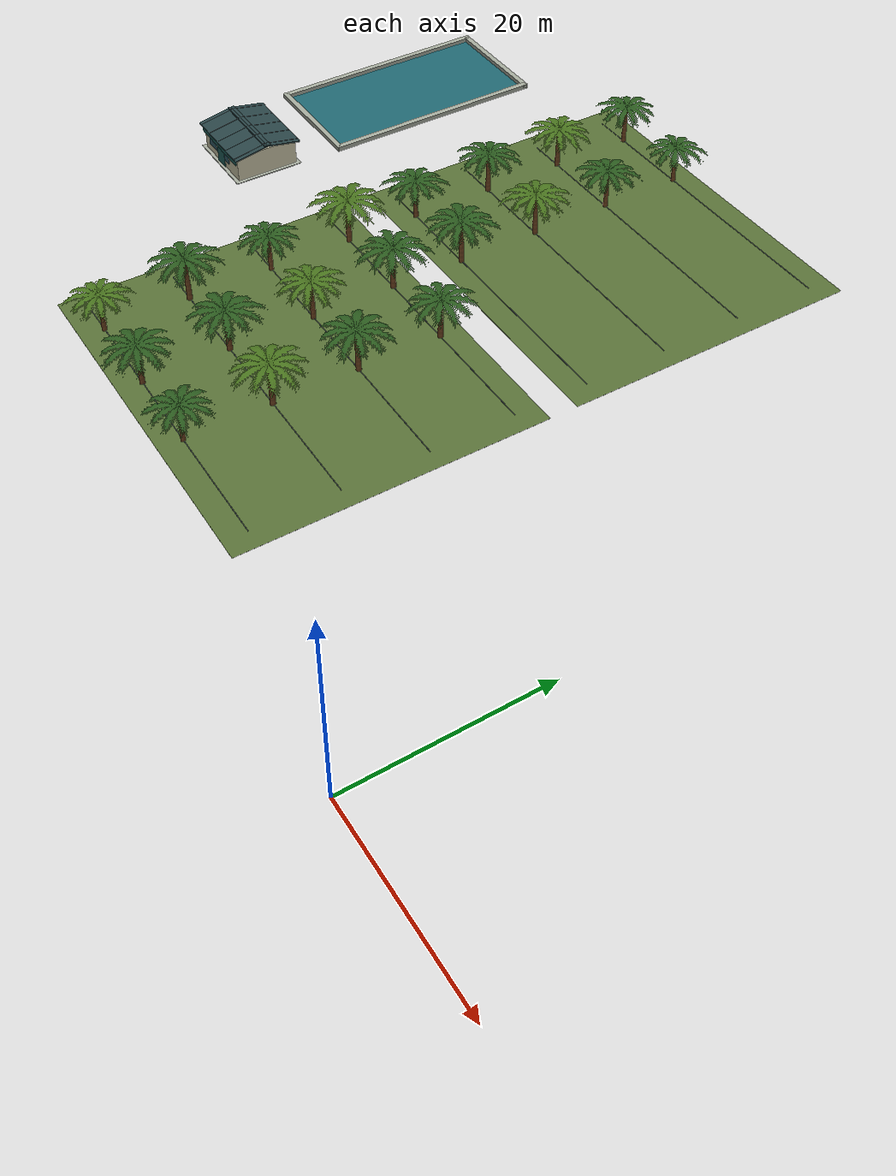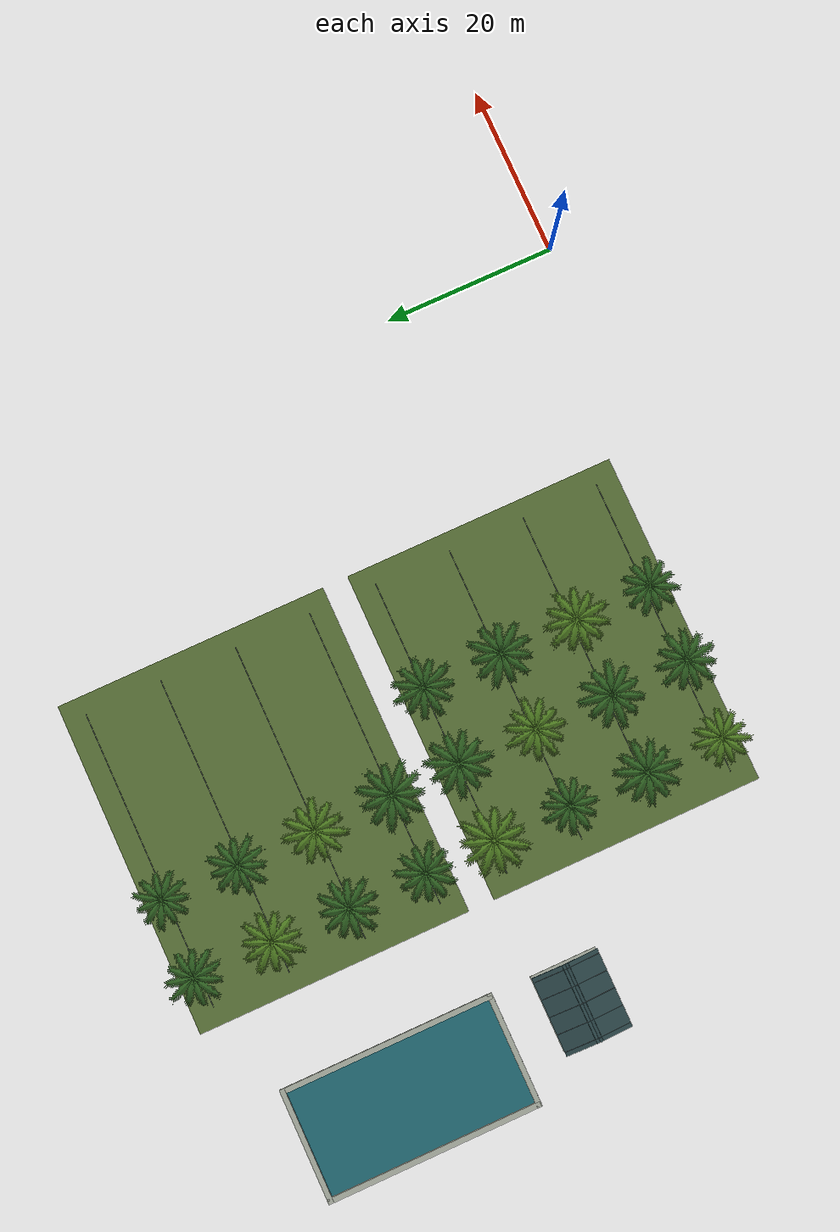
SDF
<sdf version="1.9">
 <world name="fleetscope_estate">
  <model name="plot_-44_20">
   <static>true</static>
   <pose>-44 20 0 0 0 0</pose>
   <link name="structure">
    <visual name="visual_0">
     <pose>0 0 0.008 0 0 0</pose>
     <geometry><box><size>39 32 0.016</size></box></geometry>
     <material>
      <ambient>0.34 0.43 0.21 1</ambient>
      <diffuse>0.34 0.43 0.21 1</diffuse>
      <specular>.08 .08 .08 1</specular>
     </material>
     <cast_shadows>false</cast_shadows>
    </visual>
    <collision name="collision_0">
     <pose>0 0 0.008 0 0 0</pose>
     <geometry><box><size>39 32 0.016</size></box></geometry>
    </collision>
   </link>
  </model>
  <model name="irrigation_-44_20_0">
   <static>true</static>
   <pose>-44 6.5 0 0 0 0</pose>
   <link name="structure">
    <visual name="visual_0">
     <pose>0 0 0.04 0 1.570796 0</pose>
     <geometry><cylinder><radius>0.035</radius><length>35</length></cylinder></geometry>
     <material>
      <ambient>0.25 0.29 0.3 1</ambient>
      <diffuse>0.25 0.29 0.3 1</diffuse>
      <specular>.08 .08 .08 1</specular>
     </material>
    </visual>
    <collision name="collision_0">
     <pose>0 0 0.04 0 1.570796 0</pose>
     <geometry><cylinder><radius>0.035</radius><length>35</length></cylinder></geometry>
    </collision>
   </link>
  </model>
  <model name="palm_000">
   <static>true</static>
   <pose>-57.5 6.5 0 0 0 3.1574</pose>
   <link name="structure">
    <visual name="visual_0">
     <geometry>
      <mesh><uri>model://estate_palm/meshes/trunk.obj</uri><scale>0.9262064 0.9262064 0.9262064</scale></mesh>
     </geometry>
     <material>
      <ambient>0.4 0.24 0.11 1</ambient>
      <diffuse>0.4 0.24 0.11 1</diffuse>
      <specular>.08 .08 .08 1</specular>
     </material>
    </visual>
    <visual name="visual_1">
     <geometry>
      <mesh><uri>model://estate_palm/meshes/fronds.obj</uri><scale>0.9262064 0.9262064 0.9262064</scale></mesh>
     </geometry>
     <material>
      <ambient>0.29 0.46 0.12 1</ambient>
      <diffuse>0.29 0.46 0.12 1</diffuse>
      <specular>.08 .08 .08 1</specular>
     </material>
    </visual>
    <collision name="collision_2">
     <pose>0 0 2.083964 0 0 0</pose>
     <geometry>
      <cylinder><radius>0.2408136574199387</radius><length>4.167928686114323</length></cylinder>
     </geometry>
    </collision>
   </link>
  </model>
  <model name="palm_001">
   <static>true</static>
   <pose>-48.5 6.5 0 0 0 5.403543</pose>
   <link name="structure">
    <visual name="visual_0">
     <geometry>
      <mesh><uri>model://estate_palm/meshes/trunk.obj</uri><scale>1.012601 1.012601 1.012601</scale></mesh>
     </geometry>
     <material>
      <ambient>0.4 0.24 0.11 1</ambient>
      <diffuse>0.4 0.24 0.11 1</diffuse>
      <specular>.08 .08 .08 1</specular>
     </material>
    </visual>
    <visual name="visual_1">
     <geometry>
      <mesh><uri>model://estate_palm/meshes/fronds.obj</uri><scale>1.012601 1.012601 1.012601</scale></mesh>
     </geometry>
     <material>
      <ambient>0.17 0.36 0.12 1</ambient>
      <diffuse>0.17 0.36 0.12 1</diffuse>
      <specular>.08 .08 .08 1</specular>
     </material>
    </visual>
    <collision name="collision_2">
     <pose>0 0 2.278352 0 0 0</pose>
     <geometry>
      <cylinder><radius>0.2632762591706197</radius><length>4.556704485645341</length></cylinder>
     </geometry>
    </collision>
   </link>
  </model>
  <model name="palm_002">
   <static>true</static>
   <pose>-39.5 6.5 0 0 0 1.402938</pose>
   <link name="structure">
    <visual name="visual_0">
     <geometry>
      <mesh><uri>model://estate_palm/meshes/trunk.obj</uri><scale>0.9225801 0.9225801 0.9225801</scale></mesh>
     </geometry>
     <material>
      <ambient>0.4 0.24 0.11 1</ambient>
      <diffuse>0.4 0.24 0.11 1</diffuse>
      <specular>.08 .08 .08 1</specular>
     </material>
    </visual>
    <visual name="visual_1">
     <geometry>
      <mesh><uri>model://estate_palm/meshes/fronds.obj</uri><scale>0.9225801 0.9225801 0.9225801</scale></mesh>
     </geometry>
     <material>
      <ambient>0.17 0.36 0.12 1</ambient>
      <diffuse>0.17 0.36 0.12 1</diffuse>
      <specular>.08 .08 .08 1</specular>
     </material>
    </visual>
    <collision name="collision_2">
     <pose>0 0 2.075805 0 0 0</pose>
     <geometry>
      <cylinder><radius>0.2398708278489981</radius><length>4.151610482001891</length></cylinder>
     </geometry>
    </collision>
   </link>
  </model>
  <model name="irrigation_-44_20_1">
   <static>true</static>
   <pose>-44 15.5 0 0 0 0</pose>
   <link name="structure">
    <visual name="visual_0">
     <pose>0 0 0.04 0 1.570796 0</pose>
     <geometry><cylinder><radius>0.035</radius><length>35</length></cylinder></geometry>
     <material>
      <ambient>0.25 0.29 0.3 1</ambient>
      <diffuse>0.25 0.29 0.3 1</diffuse>
      <specular>.08 .08 .08 1</specular>
     </material>
    </visual>
    <collision name="collision_0">
     <pose>0 0 0.04 0 1.570796 0</pose>
     <geometry><cylinder><radius>0.035</radius><length>35</length></cylinder></geometry>
    </collision>
   </link>
  </model>
  <model name="palm_004">
   <static>true</static>
   <pose>-57.5 15.5 0 0 0 3.442001</pose>
   <link name="structure">
    <visual name="visual_0">
     <geometry>
      <mesh><uri>model://estate_palm/meshes/trunk.obj</uri><scale>1.072342 1.072342 1.072342</scale></mesh>
     </geometry>
     <material>
      <ambient>0.4 0.24 0.11 1</ambient>
      <diffuse>0.4 0.24 0.11 1</diffuse>
      <specular>.08 .08 .08 1</specular>
     </material>
    </visual>
    <visual name="visual_1">
     <geometry>
      <mesh><uri>model://estate_palm/meshes/fronds.obj</uri><scale>1.072342 1.072342 1.072342</scale></mesh>
     </geometry>
     <material>
      <ambient>0.17 0.36 0.12 1</ambient>
      <diffuse>0.17 0.36 0.12 1</diffuse>
      <specular>.08 .08 .08 1</specular>
     </material>
    </visual>
    <collision name="collision_2">
     <pose>0 0 2.41277 0 0 0</pose>
     <geometry>
      <cylinder><radius>0.2788089574780385</radius><length>4.825539648658358</length></cylinder>
     </geometry>
    </collision>
   </link>
  </model>
  <model name="palm_005">
   <static>true</static>
   <pose>-48.5 15.5 0 0 0 4.826211</pose>
   <link name="structure">
    <visual name="visual_0">
     <geometry>
      <mesh><uri>model://estate_palm/meshes/trunk.obj</uri><scale>1.060719 1.060719 1.060719</scale></mesh>
     </geometry>
     <material>
      <ambient>0.4 0.24 0.11 1</ambient>
      <diffuse>0.4 0.24 0.11 1</diffuse>
      <specular>.08 .08 .08 1</specular>
     </material>
    </visual>
    <visual name="visual_1">
     <geometry>
      <mesh><uri>model://estate_palm/meshes/fronds.obj</uri><scale>1.060719 1.060719 1.060719</scale></mesh>
     </geometry>
     <material>
      <ambient>0.17 0.36 0.12 1</ambient>
      <diffuse>0.17 0.36 0.12 1</diffuse>
      <specular>.08 .08 .08 1</specular>
     </material>
    </visual>
    <collision name="collision_2">
     <pose>0 0 2.386617 0 0 0</pose>
     <geometry>
      <cylinder><radius>0.2757868303658065</radius><length>4.773233602485112</length></cylinder>
     </geometry>
    </collision>
   </link>
  </model>
  <model name="palm_006">
   <static>true</static>
   <pose>-39.5 15.5 0 0 0 3.685219</pose>
   <link name="structure">
    <visual name="visual_0">
     <geometry>
      <mesh><uri>model://estate_palm/meshes/trunk.obj</uri><scale>1.065226 1.065226 1.065226</scale></mesh>
     </geometry>
     <material>
      <ambient>0.4 0.24 0.11 1</ambient>
      <diffuse>0.4 0.24 0.11 1</diffuse>
      <specular>.08 .08 .08 1</specular>
     </material>
    </visual>
    <visual name="visual_1">
     <geometry>
      <mesh><uri>model://estate_palm/meshes/fronds.obj</uri><scale>1.065226 1.065226 1.065226</scale></mesh>
     </geometry>
     <material>
      <ambient>0.29 0.46 0.12 1</ambient>
      <diffuse>0.29 0.46 0.12 1</diffuse>
      <specular>.08 .08 .08 1</specular>
     </material>
    </visual>
    <collision name="collision_2">
     <pose>0 0 2.396758 0 0 0</pose>
     <geometry><cylinder><radius>0.276958684806673</radius><length>4.793515698577033</length></cylinder></geometry>
    </collision>
   </link>
  </model>
  <model name="irrigation_-44_20_2">
   <static>true</static>
   <pose>-44 24.5 0 0 0 0</pose>
   <link name="structure">
    <visual name="visual_0">
     <pose>0 0 0.04 0 1.570796 0</pose>
     <geometry><cylinder><radius>0.035</radius><length>35</length></cylinder></geometry>
     <material>
      <ambient>0.25 0.29 0.3 1</ambient>
      <diffuse>0.25 0.29 0.3 1</diffuse>
      <specular>.08 .08 .08 1</specular>
     </material>
    </visual>
    <collision name="collision_0">
     <pose>0 0 0.04 0 1.570796 0</pose>
     <geometry><cylinder><radius>0.035</radius><length>35</length></cylinder></geometry>
    </collision>
   </link>
  </model>
  <model name="palm_008">
   <static>true</static>
   <pose>-57.5 24.5 0 0 0 5.131863</pose>
   <link name="structure">
    <visual name="visual_0">
     <geometry>
      <mesh><uri>model://estate_palm/meshes/trunk.obj</uri><scale>0.924362 0.924362 0.924362</scale></mesh>
     </geometry>
     <material>
      <ambient>0.4 0.24 0.11 1</ambient>
      <diffuse>0.4 0.24 0.11 1</diffuse>
      <specular>.08 .08 .08 1</specular>
     </material>
    </visual>
    <visual name="visual_1">
     <geometry>
      <mesh><uri>model://estate_palm/meshes/fronds.obj</uri><scale>0.924362 0.924362 0.924362</scale></mesh>
     </geometry>
     <material>
      <ambient>0.17 0.36 0.12 1</ambient>
      <diffuse>0.17 0.36 0.12 1</diffuse>
      <specular>.08 .08 .08 1</specular>
     </material>
    </visual>
    <collision name="collision_2">
     <pose>0 0 2.079815 0 0 0</pose>
     <geometry>
      <cylinder><radius>0.24033413029335546</radius><length>4.159629178154229</length></cylinder>
     </geometry>
    </collision>
   </link>
  </model>
  <model name="palm_009">
   <static>true</static>
   <pose>-48.5 24.5 0 0 0 5.119305</pose>
   <link name="structure">
    <visual name="visual_0">
     <geometry>
      <mesh><uri>model://estate_palm/meshes/trunk.obj</uri><scale>0.9989241 0.9989241 0.9989241</scale></mesh>
     </geometry>
     <material>
      <ambient>0.4 0.24 0.11 1</ambient>
      <diffuse>0.4 0.24 0.11 1</diffuse>
      <specular>.08 .08 .08 1</specular>
     </material>
    </visual>
    <visual name="visual_1">
     <geometry>
      <mesh><uri>model://estate_palm/meshes/fronds.obj</uri><scale>0.9989241 0.9989241 0.9989241</scale></mesh>
     </geometry>
     <material>
      <ambient>0.29 0.46 0.12 1</ambient>
      <diffuse>0.29 0.46 0.12 1</diffuse>
      <specular>.08 .08 .08 1</specular>
     </material>
    </visual>
    <collision name="collision_2">
     <pose>0 0 2.247579 0 0 0</pose>
     <geometry><cylinder><radius>0.259720256422886</radius><length>4.495158284242257</length></cylinder></geometry>
    </collision>
   </link>
  </model>
  <model name="palm_010">
   <static>true</static>
   <pose>-39.5 24.5 0 0 0 4.268727</pose>
   <link name="structure">
    <visual name="visual_0">
     <geometry>
      <mesh><uri>model://estate_palm/meshes/trunk.obj</uri><scale>1.050739 1.050739 1.050739</scale></mesh>
     </geometry>
     <material>
      <ambient>0.4 0.24 0.11 1</ambient>
      <diffuse>0.4 0.24 0.11 1</diffuse>
      <specular>.08 .08 .08 1</specular>
     </material>
    </visual>
    <visual name="visual_1">
     <geometry>
      <mesh><uri>model://estate_palm/meshes/fronds.obj</uri><scale>1.050739 1.050739 1.050739</scale></mesh>
     </geometry>
     <material>
      <ambient>0.17 0.36 0.12 1</ambient>
      <diffuse>0.17 0.36 0.12 1</diffuse>
      <specular>.08 .08 .08 1</specular>
     </material>
    </visual>
    <collision name="collision_2">
     <pose>0 0 2.364163 0 0 0</pose>
     <geometry>
      <cylinder><radius>0.27319218545887175</radius><length>4.728326286788165</length></cylinder>
     </geometry>
    </collision>
   </link>
  </model>
  <model name="irrigation_-44_20_3">
   <static>true</static>
   <pose>-44 33.5 0 0 0 0</pose>
   <link name="structure">
    <visual name="visual_0">
     <pose>0 0 0.04 0 1.570796 0</pose>
     <geometry><cylinder><radius>0.035</radius><length>35</length></cylinder></geometry>
     <material>
      <ambient>0.25 0.29 0.3 1</ambient>
      <diffuse>0.25 0.29 0.3 1</diffuse>
      <specular>.08 .08 .08 1</specular>
     </material>
    </visual>
    <collision name="collision_0">
     <pose>0 0 0.04 0 1.570796 0</pose>
     <geometry><cylinder><radius>0.035</radius><length>35</length></cylinder></geometry>
    </collision>
   </link>
  </model>
  <model name="palm_012">
   <static>true</static>
   <pose>-57.5 33.5 0 0 0 5.839073</pose>
   <link name="structure">
    <visual name="visual_0">
     <geometry>
      <mesh><uri>model://estate_palm/meshes/trunk.obj</uri><scale>1.115581 1.115581 1.115581</scale></mesh>
     </geometry>
     <material>
      <ambient>0.4 0.24 0.11 1</ambient>
      <diffuse>0.4 0.24 0.11 1</diffuse>
      <specular>.08 .08 .08 1</specular>
     </material>
    </visual>
    <visual name="visual_1">
     <geometry>
      <mesh><uri>model://estate_palm/meshes/fronds.obj</uri><scale>1.115581 1.115581 1.115581</scale></mesh>
     </geometry>
     <material>
      <ambient>0.29 0.46 0.12 1</ambient>
      <diffuse>0.29 0.46 0.12 1</diffuse>
      <specular>.08 .08 .08 1</specular>
     </material>
    </visual>
    <collision name="collision_2">
     <pose>0 0 2.510057 0 0 0</pose>
     <geometry>
      <cylinder><radius>0.29005098631037485</radius><length>5.020113224602641</length></cylinder>
     </geometry>
    </collision>
   </link>
  </model>
  <model name="palm_013">
   <static>true</static>
   <pose>-48.5 33.5 0 0 0 6.281025</pose>
   <link name="structure">
    <visual name="visual_0">
     <geometry>
      <mesh><uri>model://estate_palm/meshes/trunk.obj</uri><scale>1.07713 1.07713 1.07713</scale></mesh>
     </geometry>
     <material>
      <ambient>0.4 0.24 0.11 1</ambient>
      <diffuse>0.4 0.24 0.11 1</diffuse>
      <specular>.08 .08 .08 1</specular>
     </material>
    </visual>
    <visual name="visual_1">
     <geometry>
      <mesh><uri>model://estate_palm/meshes/fronds.obj</uri><scale>1.07713 1.07713 1.07713</scale></mesh>
     </geometry>
     <material>
      <ambient>0.17 0.36 0.12 1</ambient>
      <diffuse>0.17 0.36 0.12 1</diffuse>
      <specular>.08 .08 .08 1</specular>
     </material>
    </visual>
    <collision name="collision_2">
     <pose>0 0 2.423542 0 0 0</pose>
     <geometry>
      <cylinder><radius>0.28005377354269406</radius><length>4.847084542085089</length></cylinder>
     </geometry>
    </collision>
   </link>
  </model>
  <model name="palm_014">
   <static>true</static>
   <pose>-39.5 33.5 0 0 0 0.4795321</pose>
   <link name="structure">
    <visual name="visual_0">
     <geometry>
      <mesh><uri>model://estate_palm/meshes/trunk.obj</uri><scale>1.012989 1.012989 1.012989</scale></mesh>
     </geometry>
     <material>
      <ambient>0.4 0.24 0.11 1</ambient>
      <diffuse>0.4 0.24 0.11 1</diffuse>
      <specular>.08 .08 .08 1</specular>
     </material>
    </visual>
    <visual name="visual_1">
     <geometry>
      <mesh><uri>model://estate_palm/meshes/fronds.obj</uri><scale>1.012989 1.012989 1.012989</scale></mesh>
     </geometry>
     <material>
      <ambient>0.17 0.36 0.12 1</ambient>
      <diffuse>0.17 0.36 0.12 1</diffuse>
      <specular>.08 .08 .08 1</specular>
     </material>
    </visual>
    <collision name="collision_2">
     <pose>0 0 2.279226 0 0 0</pose>
     <geometry>
      <cylinder><radius>0.2633772076672125</radius><length>4.558451671163293</length></cylinder>
     </geometry>
    </collision>
   </link>
  </model>
  <model name="plot_-44_55">
   <static>true</static>
   <pose>-44 55 0 0 0 0</pose>
   <link name="structure">
    <visual name="visual_0">
     <pose>0 0 0.008 0 0 0</pose>
     <geometry><box><size>39 32 0.016</size></box></geometry>
     <material>
      <ambient>0.34 0.43 0.21 1</ambient>
      <diffuse>0.34 0.43 0.21 1</diffuse>
      <specular>.08 .08 .08 1</specular>
     </material>
     <cast_shadows>false</cast_shadows>
    </visual>
    <collision name="collision_0">
     <pose>0 0 0.008 0 0 0</pose>
     <geometry><box><size>39 32 0.016</size></box></geometry>
    </collision>
   </link>
  </model>
  <model name="irrigation_-44_55_0">
   <static>true</static>
   <pose>-44 41.5 0 0 0 0</pose>
   <link name="structure">
    <visual name="visual_0">
     <pose>0 0 0.04 0 1.570796 0</pose>
     <geometry><cylinder><radius>0.035</radius><length>35</length></cylinder></geometry>
     <material>
      <ambient>0.25 0.29 0.3 1</ambient>
      <diffuse>0.25 0.29 0.3 1</diffuse>
      <specular>.08 .08 .08 1</specular>
     </material>
    </visual>
    <collision name="collision_0">
     <pose>0 0 0.04 0 1.570796 0</pose>
     <geometry><cylinder><radius>0.035</radius><length>35</length></cylinder></geometry>
    </collision>
   </link>
  </model>
  <model name="palm_016">
   <static>true</static>
   <pose>-57.5 41.5 0 0 0 2.874229</pose>
   <link name="structure">
    <visual name="visual_0">
     <geometry>
      <mesh><uri>model://estate_palm/meshes/trunk.obj</uri><scale>0.9642668 0.9642668 0.9642668</scale></mesh>
     </geometry>
     <material>
      <ambient>0.4 0.24 0.11 1</ambient>
      <diffuse>0.4 0.24 0.11 1</diffuse>
      <specular>.08 .08 .08 1</specular>
     </material>
    </visual>
    <visual name="visual_1">
     <geometry>
      <mesh><uri>model://estate_palm/meshes/fronds.obj</uri><scale>0.9642668 0.9642668 0.9642668</scale></mesh>
     </geometry>
     <material>
      <ambient>0.17 0.36 0.12 1</ambient>
      <diffuse>0.17 0.36 0.12 1</diffuse>
      <specular>.08 .08 .08 1</specular>
     </material>
    </visual>
    <collision name="collision_2">
     <pose>0 0 2.1696 0 0 0</pose>
     <geometry>
      <cylinder><radius>0.25070937121846404</radius><length>4.339200655704184</length></cylinder>
     </geometry>
    </collision>
   </link>
  </model>
  <model name="palm_017">
   <static>true</static>
   <pose>-48.5 41.5 0 0 0 4.423209</pose>
   <link name="structure">
    <visual name="visual_0">
     <geometry>
      <mesh><uri>model://estate_palm/meshes/trunk.obj</uri><scale>1.092824 1.092824 1.092824</scale></mesh>
     </geometry>
     <material>
      <ambient>0.4 0.24 0.11 1</ambient>
      <diffuse>0.4 0.24 0.11 1</diffuse>
      <specular>.08 .08 .08 1</specular>
     </material>
    </visual>
    <visual name="visual_1">
     <geometry>
      <mesh><uri>model://estate_palm/meshes/fronds.obj</uri><scale>1.092824 1.092824 1.092824</scale></mesh>
     </geometry>
     <material>
      <ambient>0.17 0.36 0.12 1</ambient>
      <diffuse>0.17 0.36 0.12 1</diffuse>
      <specular>.08 .08 .08 1</specular>
     </material>
    </visual>
    <collision name="collision_2">
     <pose>0 0 2.458855 0 0 0</pose>
     <geometry>
      <cylinder><radius>0.28413435913087637</radius><length>4.917710061880553</length></cylinder>
     </geometry>
    </collision>
   </link>
  </model>
  <model name="irrigation_-44_55_1">
   <static>true</static>
   <pose>-44 50.5 0 0 0 0</pose>
   <link name="structure">
    <visual name="visual_0">
     <pose>0 0 0.04 0 1.570796 0</pose>
     <geometry><cylinder><radius>0.035</radius><length>35</length></cylinder></geometry>
     <material>
      <ambient>0.25 0.29 0.3 1</ambient>
      <diffuse>0.25 0.29 0.3 1</diffuse>
      <specular>.08 .08 .08 1</specular>
     </material>
    </visual>
    <collision name="collision_0">
     <pose>0 0 0.04 0 1.570796 0</pose>
     <geometry><cylinder><radius>0.035</radius><length>35</length></cylinder></geometry>
    </collision>
   </link>
  </model>
  <model name="palm_020">
   <static>true</static>
   <pose>-57.5 50.5 0 0 0 2.505567</pose>
   <link name="structure">
    <visual name="visual_0">
     <geometry>
      <mesh><uri>model://estate_palm/meshes/trunk.obj</uri><scale>0.9928878 0.9928878 0.9928878</scale></mesh>
     </geometry>
     <material>
      <ambient>0.4 0.24 0.11 1</ambient>
      <diffuse>0.4 0.24 0.11 1</diffuse>
      <specular>.08 .08 .08 1</specular>
     </material>
    </visual>
    <visual name="visual_1">
     <geometry>
      <mesh><uri>model://estate_palm/meshes/fronds.obj</uri><scale>0.9928878 0.9928878 0.9928878</scale></mesh>
     </geometry>
     <material>
      <ambient>0.17 0.36 0.12 1</ambient>
      <diffuse>0.17 0.36 0.12 1</diffuse>
      <specular>.08 .08 .08 1</specular>
     </material>
    </visual>
    <collision name="collision_2">
     <pose>0 0 2.233998 0 0 0</pose>
     <geometry>
      <cylinder><radius>0.2581508407949443</radius><length>4.467995321450959</length></cylinder>
     </geometry>
    </collision>
   </link>
  </model>
  <model name="palm_021">
   <static>true</static>
   <pose>-48.5 50.5 0 0 0 3.131886</pose>
   <link name="structure">
    <visual name="visual_0">
     <geometry>
      <mesh><uri>model://estate_palm/meshes/trunk.obj</uri><scale>1.028858 1.028858 1.028858</scale></mesh>
     </geometry>
     <material>
      <ambient>0.4 0.24 0.11 1</ambient>
      <diffuse>0.4 0.24 0.11 1</diffuse>
      <specular>.08 .08 .08 1</specular>
     </material>
    </visual>
    <visual name="visual_1">
     <geometry>
      <mesh><uri>model://estate_palm/meshes/fronds.obj</uri><scale>1.028858 1.028858 1.028858</scale></mesh>
     </geometry>
     <material>
      <ambient>0.29 0.46 0.12 1</ambient>
      <diffuse>0.29 0.46 0.12 1</diffuse>
      <specular>.08 .08 .08 1</specular>
     </material>
    </visual>
    <collision name="collision_2">
     <pose>0 0 2.31493 0 0 0</pose>
     <geometry><cylinder><radius>0.267503059093017</radius><length>4.629860638148371</length></cylinder></geometry>
    </collision>
   </link>
  </model>
  <model name="irrigation_-44_55_2">
   <static>true</static>
   <pose>-44 59.5 0 0 0 0</pose>
   <link name="structure">
    <visual name="visual_0">
     <pose>0 0 0.04 0 1.570796 0</pose>
     <geometry><cylinder><radius>0.035</radius><length>35</length></cylinder></geometry>
     <material>
      <ambient>0.25 0.29 0.3 1</ambient>
      <diffuse>0.25 0.29 0.3 1</diffuse>
      <specular>.08 .08 .08 1</specular>
     </material>
    </visual>
    <collision name="collision_0">
     <pose>0 0 0.04 0 1.570796 0</pose>
     <geometry><cylinder><radius>0.035</radius><length>35</length></cylinder></geometry>
    </collision>
   </link>
  </model>
  <model name="palm_024">
   <static>true</static>
   <pose>-57.5 59.5 0 0 0 5.760139</pose>
   <link name="structure">
    <visual name="visual_0">
     <geometry>
      <mesh><uri>model://estate_palm/meshes/trunk.obj</uri><scale>1.008027 1.008027 1.008027</scale></mesh>
     </geometry>
     <material>
      <ambient>0.4 0.24 0.11 1</ambient>
      <diffuse>0.4 0.24 0.11 1</diffuse>
      <specular>.08 .08 .08 1</specular>
     </material>
    </visual>
    <visual name="visual_1">
     <geometry>
      <mesh><uri>model://estate_palm/meshes/fronds.obj</uri><scale>1.008027 1.008027 1.008027</scale></mesh>
     </geometry>
     <material>
      <ambient>0.29 0.46 0.12 1</ambient>
      <diffuse>0.29 0.46 0.12 1</diffuse>
      <specular>.08 .08 .08 1</specular>
     </material>
    </visual>
    <collision name="collision_2">
     <pose>0 0 2.26806 0 0 0</pose>
     <geometry>
      <cylinder><radius>0.2620869566647268</radius><length>4.536120403812579</length></cylinder>
     </geometry>
    </collision>
   </link>
  </model>
  <model name="palm_025">
   <static>true</static>
   <pose>-48.5 59.5 0 0 0 2.638725</pose>
   <link name="structure">
    <visual name="visual_0">
     <geometry>
      <mesh><uri>model://estate_palm/meshes/trunk.obj</uri><scale>0.9569016 0.9569016 0.9569016</scale></mesh>
     </geometry>
     <material>
      <ambient>0.4 0.24 0.11 1</ambient>
      <diffuse>0.4 0.24 0.11 1</diffuse>
      <specular>.08 .08 .08 1</specular>
     </material>
    </visual>
    <visual name="visual_1">
     <geometry>
      <mesh><uri>model://estate_palm/meshes/fronds.obj</uri><scale>0.9569016 0.9569016 0.9569016</scale></mesh>
     </geometry>
     <material>
      <ambient>0.17 0.36 0.12 1</ambient>
      <diffuse>0.17 0.36 0.12 1</diffuse>
      <specular>.08 .08 .08 1</specular>
     </material>
    </visual>
    <collision name="collision_2">
     <pose>0 0 2.153028 0 0 0</pose>
     <geometry>
      <cylinder><radius>0.2487944043271551</radius><length>4.306056997969992</length></cylinder>
     </geometry>
    </collision>
   </link>
  </model>
  <model name="irrigation_-44_55_3">
   <static>true</static>
   <pose>-44 68.5 0 0 0 0</pose>
   <link name="structure">
    <visual name="visual_0">
     <pose>0 0 0.04 0 1.570796 0</pose>
     <geometry><cylinder><radius>0.035</radius><length>35</length></cylinder></geometry>
     <material>
      <ambient>0.25 0.29 0.3 1</ambient>
      <diffuse>0.25 0.29 0.3 1</diffuse>
      <specular>.08 .08 .08 1</specular>
     </material>
    </visual>
    <collision name="collision_0">
     <pose>0 0 0.04 0 1.570796 0</pose>
     <geometry><cylinder><radius>0.035</radius><length>35</length></cylinder></geometry>
    </collision>
   </link>
  </model>
  <model name="palm_028">
   <static>true</static>
   <pose>-57.5 68.5 0 0 0 0.8105237</pose>
   <link name="structure">
    <visual name="visual_0">
     <geometry>
      <mesh><uri>model://estate_palm/meshes/trunk.obj</uri><scale>0.9493955 0.9493955 0.9493955</scale></mesh>
     </geometry>
     <material>
      <ambient>0.4 0.24 0.11 1</ambient>
      <diffuse>0.4 0.24 0.11 1</diffuse>
      <specular>.08 .08 .08 1</specular>
     </material>
    </visual>
    <visual name="visual_1">
     <geometry>
      <mesh><uri>model://estate_palm/meshes/fronds.obj</uri><scale>0.9493955 0.9493955 0.9493955</scale></mesh>
     </geometry>
     <material>
      <ambient>0.17 0.36 0.12 1</ambient>
      <diffuse>0.17 0.36 0.12 1</diffuse>
      <specular>.08 .08 .08 1</specular>
     </material>
    </visual>
    <collision name="collision_2">
     <pose>0 0 2.13614 0 0 0</pose>
     <geometry>
      <cylinder><radius>0.24684282249365203</radius><length>4.272279620082439</length></cylinder>
     </geometry>
    </collision>
   </link>
  </model>
  <model name="palm_029">
   <static>true</static>
   <pose>-48.5 68.5 0 0 0 4.427526</pose>
   <link name="structure">
    <visual name="visual_0">
     <geometry>
      <mesh><uri>model://estate_palm/meshes/trunk.obj</uri><scale>0.9107553 0.9107553 0.9107553</scale></mesh>
     </geometry>
     <material>
      <ambient>0.4 0.24 0.11 1</ambient>
      <diffuse>0.4 0.24 0.11 1</diffuse>
      <specular>.08 .08 .08 1</specular>
     </material>
    </visual>
    <visual name="visual_1">
     <geometry>
      <mesh><uri>model://estate_palm/meshes/fronds.obj</uri><scale>0.9107553 0.9107553 0.9107553</scale></mesh>
     </geometry>
     <material>
      <ambient>0.17 0.36 0.12 1</ambient>
      <diffuse>0.17 0.36 0.12 1</diffuse>
      <specular>.08 .08 .08 1</specular>
     </material>
    </visual>
    <collision name="collision_2">
     <pose>0 0 2.049199 0 0 0</pose>
     <geometry>
      <cylinder><radius>0.23679637684127602</radius><length>4.098398829945162</length></cylinder>
     </geometry>
    </collision>
   </link>
  </model>
  <model name="reservoir">
   <static>true</static>
   <pose>-79 53 0 0 0 0</pose>
   <link name="structure">
    <visual name="visual_0">
     <pose>0 0 0.02 0 0 0</pose>
     <geometry><box><size>12 24 0.04</size></box></geometry>
     <material>
      <ambient>0.12 0.39 0.43 1</ambient>
      <diffuse>0.12 0.39 0.43 1</diffuse>
      <specular>.08 .08 .08 1</specular>
     </material>
     <cast_shadows>false</cast_shadows>
    </visual>
    <collision name="collision_0">
     <pose>0 0 0.02 0 0 0</pose>
     <geometry><box><size>12 24 0.04</size></box></geometry>
    </collision>
    <visual name="visual_1">
     <pose>-6.3 0 0.25 0 0 0</pose>
     <geometry><box><size>0.6 25 0.5</size></box></geometry>
     <material>
      <ambient>0.63 0.65 0.6 1</ambient>
      <diffuse>0.63 0.65 0.6 1</diffuse>
      <specular>.08 .08 .08 1</specular>
     </material>
    </visual>
    <collision name="collision_1">
     <pose>-6.3 0 0.25 0 0 0</pose>
     <geometry><box><size>0.6 25 0.5</size></box></geometry>
    </collision>
    <visual name="visual_2">
     <pose>6.3 0 0.25 0 0 0</pose>
     <geometry><box><size>0.6 25 0.5</size></box></geometry>
     <material>
      <ambient>0.63 0.65 0.6 1</ambient>
      <diffuse>0.63 0.65 0.6 1</diffuse>
      <specular>.08 .08 .08 1</specular>
     </material>
    </visual>
    <collision name="collision_2">
     <pose>6.3 0 0.25 0 0 0</pose>
     <geometry><box><size>0.6 25 0.5</size></box></geometry>
    </collision>
    <visual name="visual_3">
     <pose>0 -12.3 0.25 0 0 0</pose>
     <geometry><box><size>13.2 0.6 0.5</size></box></geometry>
     <material>
      <ambient>0.63 0.65 0.6 1</ambient>
      <diffuse>0.63 0.65 0.6 1</diffuse>
      <specular>.08 .08 .08 1</specular>
     </material>
    </visual>
    <collision name="collision_3">
     <pose>0 -12.3 0.25 0 0 0</pose>
     <geometry><box><size>13.2 0.6 0.5</size></box></geometry>
    </collision>
    <visual name="visual_4">
     <pose>0 12.3 0.25 0 0 0</pose>
     <geometry><box><size>13.2 0.6 0.5</size></box></geometry>
     <material>
      <ambient>0.63 0.65 0.6 1</ambient>
      <diffuse>0.63 0.65 0.6 1</diffuse>
      <specular>.08 .08 .08 1</specular>
     </material>
    </visual>
    <collision name="collision_4">
     <pose>0 12.3 0.25 0 0 0</pose>
     <geometry><box><size>13.2 0.6 0.5</size></box></geometry>
    </collision>
   </link>
  </model>
  <model name="pump_house">
   <static>true</static>
   <pose>-77 32 0 0 0 0</pose>
   <link name="structure">
    <visual name="visual_0">
     <pose>0 0 0.05 0 0 0</pose>
     <geometry><box><size>8.8 7.8 0.1</size></box></geometry>
     <material>
      <ambient>0.63 0.65 0.6 1</ambient>
      <diffuse>0.63 0.65 0.6 1</diffuse>
      <specular>.08 .08 .08 1</specular>
     </material>
     <cast_shadows>false</cast_shadows>
    </visual>
    <collision name="collision_0">
     <pose>0 0 0.05 0 0 0</pose>
     <geometry><box><size>8.8 7.8 0.1</size></box></geometry>
    </collision>
    <visual name="visual_1">
     <pose>0 0 1.5 0 0 0</pose>
     <geometry><box><size>8 7 3</size></box></geometry>
     <material>
      <ambient>0.8 0.78 0.66 1</ambient>
      <diffuse>0.8 0.78 0.66 1</diffuse>
      <specular>.08 .08 .08 1</specular>
     </material>
    </visual>
    <collision name="collision_1">
     <pose>0 0 1.5 0 0 0</pose>
     <geometry><box><size>8 7 3</size></box></geometry>
    </collision>
    <visual name="visual_2">
     <pose>-2 -3.535 1.74 0 0 0</pose>
     <geometry><box><size>1.7 0.08 1.4</size></box></geometry>
     <material>
      <ambient>0.19 0.35 0.4 1</ambient>
      <diffuse>0.19 0.35 0.4 1</diffuse>
      <specular>.08 .08 .08 1</specular>
     </material>
    </visual>
    <visual name="visual_3">
     <pose>-2 3.535 1.74 0 0 0</pose>
     <geometry><box><size>1.7 0.08 1.4</size></box></geometry>
     <material>
      <ambient>0.19 0.35 0.4 1</ambient>
      <diffuse>0.19 0.35 0.4 1</diffuse>
      <specular>.08 .08 .08 1</specular>
     </material>
    </visual>
    <visual name="visual_4">
     <pose>1 -3.535 1.74 0 0 0</pose>
     <geometry><box><size>1.7 0.08 1.4</size></box></geometry>
     <material>
      <ambient>0.19 0.35 0.4 1</ambient>
      <diffuse>0.19 0.35 0.4 1</diffuse>
      <specular>.08 .08 .08 1</specular>
     </material>
    </visual>
    <visual name="visual_5">
     <pose>1 3.535 1.74 0 0 0</pose>
     <geometry><box><size>1.7 0.08 1.4</size></box></geometry>
     <material>
      <ambient>0.19 0.35 0.4 1</ambient>
      <diffuse>0.19 0.35 0.4 1</diffuse>
      <specular>.08 .08 .08 1</specular>
     </material>
    </visual>
    <visual name="visual_6">
     <pose>0 -3.565 1.3 0 0 0</pose>
     <geometry><box><size>1.6 0.1 2.6</size></box></geometry>
     <material>
      <ambient>0.12 0.38 0.36 1</ambient>
      <diffuse>0.12 0.38 0.36 1</diffuse>
      <specular>.08 .08 .08 1</specular>
     </material>
    </visual>
    <collision name="collision_6">
     <pose>0 -3.565 1.3 0 0 0</pose>
     <geometry><box><size>1.6 0.1 2.6</size></box></geometry>
    </collision>
    <visual name="visual_7">
     <pose>0 -1.75 3.28 0.18 0 0</pose>
     <geometry><box><size>9 4.3 0.16</size></box></geometry>
     <material>
      <ambient>0.16 0.26 0.27 1</ambient>
      <diffuse>0.16 0.26 0.27 1</diffuse>
      <specular>.08 .08 .08 1</specular>
     </material>
    </visual>
    <collision name="collision_7">
     <pose>0 -1.75 3.28 0.18 0 0</pose>
     <geometry><box><size>9 4.3 0.16</size></box></geometry>
    </collision>
    <visual name="visual_8">
     <pose>0 1.75 3.28 -0.18 0 0</pose>
     <geometry><box><size>9 4.3 0.16</size></box></geometry>
     <material>
      <ambient>0.16 0.26 0.27 1</ambient>
      <diffuse>0.16 0.26 0.27 1</diffuse>
      <specular>.08 .08 .08 1</specular>
     </material>
    </visual>
    <collision name="collision_8">
     <pose>0 1.75 3.28 -0.18 0 0</pose>
     <geometry><box><size>9 4.3 0.16</size></box></geometry>
    </collision>
    <visual name="visual_9">
     <pose>-4 -1.75 3.38 0.18 0 0</pose>
     <geometry><box><size>0.045 4.3 0.05</size></box></geometry>
     <material>
      <ambient>0.25 0.29 0.3 1</ambient>
      <diffuse>0.25 0.29 0.3 1</diffuse>
      <specular>.08 .08 .08 1</specular>
     </material>
     <cast_shadows>false</cast_shadows>
    </visual>
    <visual name="visual_10">
     <pose>-4 1.75 3.38 -0.18 0 0</pose>
     <geometry><box><size>0.045 4.3 0.05</size></box></geometry>
     <material>
      <ambient>0.25 0.29 0.3 1</ambient>
      <diffuse>0.25 0.29 0.3 1</diffuse>
      <specular>.08 .08 .08 1</specular>
     </material>
     <cast_shadows>false</cast_shadows>
    </visual>
    <visual name="visual_11">
     <pose>-2 -1.75 3.38 0.18 0 0</pose>
     <geometry><box><size>0.045 4.3 0.05</size></box></geometry>
     <material>
      <ambient>0.25 0.29 0.3 1</ambient>
      <diffuse>0.25 0.29 0.3 1</diffuse>
      <specular>.08 .08 .08 1</specular>
     </material>
     <cast_shadows>false</cast_shadows>
    </visual>
    <visual name="visual_12">
     <pose>-2 1.75 3.38 -0.18 0 0</pose>
     <geometry><box><size>0.045 4.3 0.05</size></box></geometry>
     <material>
      <ambient>0.25 0.29 0.3 1</ambient>
      <diffuse>0.25 0.29 0.3 1</diffuse>
      <specular>.08 .08 .08 1</specular>
     </material>
     <cast_shadows>false</cast_shadows>
    </visual>
    <visual name="visual_13">
     <pose>0 -1.75 3.38 0.18 0 0</pose>
     <geometry><box><size>0.045 4.3 0.05</size></box></geometry>
     <material>
      <ambient>0.25 0.29 0.3 1</ambient>
      <diffuse>0.25 0.29 0.3 1</diffuse>
      <specular>.08 .08 .08 1</specular>
     </material>
     <cast_shadows>false</cast_shadows>
    </visual>
    <visual name="visual_14">
     <pose>0 1.75 3.38 -0.18 0 0</pose>
     <geometry><box><size>0.045 4.3 0.05</size></box></geometry>
     <material>
      <ambient>0.25 0.29 0.3 1</ambient>
      <diffuse>0.25 0.29 0.3 1</diffuse>
      <specular>.08 .08 .08 1</specular>
     </material>
     <cast_shadows>false</cast_shadows>
    </visual>
    <visual name="visual_15">
     <pose>2 -1.75 3.38 0.18 0 0</pose>
     <geometry><box><size>0.045 4.3 0.05</size></box></geometry>
     <material>
      <ambient>0.25 0.29 0.3 1</ambient>
      <diffuse>0.25 0.29 0.3 1</diffuse>
      <specular>.08 .08 .08 1</specular>
     </material>
     <cast_shadows>false</cast_shadows>
    </visual>
    <visual name="visual_16">
     <pose>2 1.75 3.38 -0.18 0 0</pose>
     <geometry><box><size>0.045 4.3 0.05</size></box></geometry>
     <material>
      <ambient>0.25 0.29 0.3 1</ambient>
      <diffuse>0.25 0.29 0.3 1</diffuse>
      <specular>.08 .08 .08 1</specular>
     </material>
     <cast_shadows>false</cast_shadows>
    </visual>
    <visual name="visual_17">
     <pose>4 -1.75 3.38 0.18 0 0</pose>
     <geometry><box><size>0.045 4.3 0.05</size></box></geometry>
     <material>
      <ambient>0.25 0.29 0.3 1</ambient>
      <diffuse>0.25 0.29 0.3 1</diffuse>
      <specular>.08 .08 .08 1</specular>
     </material>
     <cast_shadows>false</cast_shadows>
    </visual>
    <visual name="visual_18">
     <pose>4 1.75 3.38 -0.18 0 0</pose>
     <geometry><box><size>0.045 4.3 0.05</size></box></geometry>
     <material>
      <ambient>0.25 0.29 0.3 1</ambient>
      <diffuse>0.25 0.29 0.3 1</diffuse>
      <specular>.08 .08 .08 1</specular>
     </material>
     <cast_shadows>false</cast_shadows>
    </visual>
    <visual name="visual_19">
     <pose>0 -3.64 2.45 0 0 0</pose>
     <geometry><box><size>8 0.16 0.65</size></box></geometry>
     <material>
      <ambient>0.12 0.38 0.36 1</ambient>
      <diffuse>0.12 0.38 0.36 1</diffuse>
      <specular>.08 .08 .08 1</specular>
     </material>
    </visual>
   </link>
  </model>
 </world>
</sdf>
